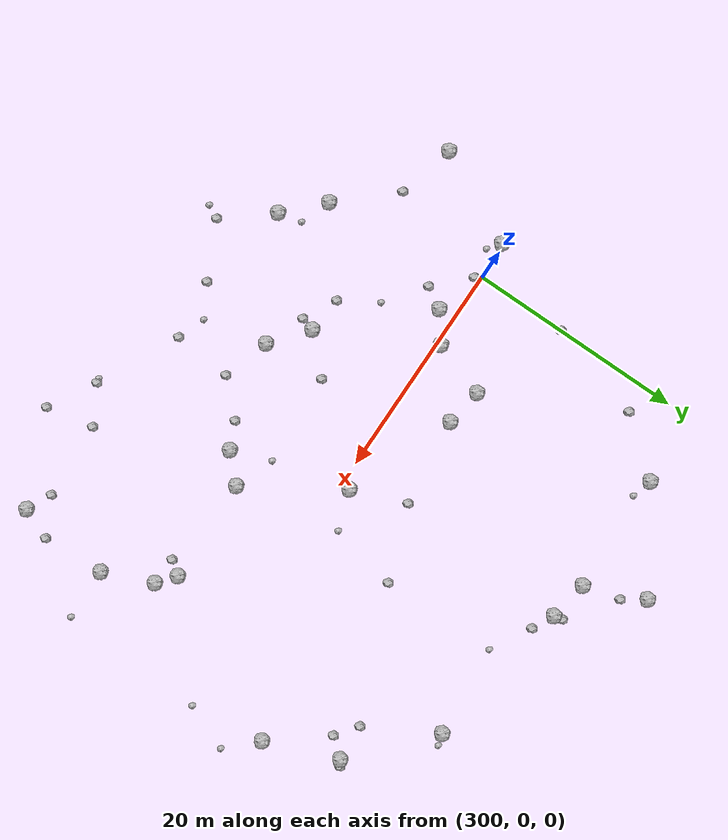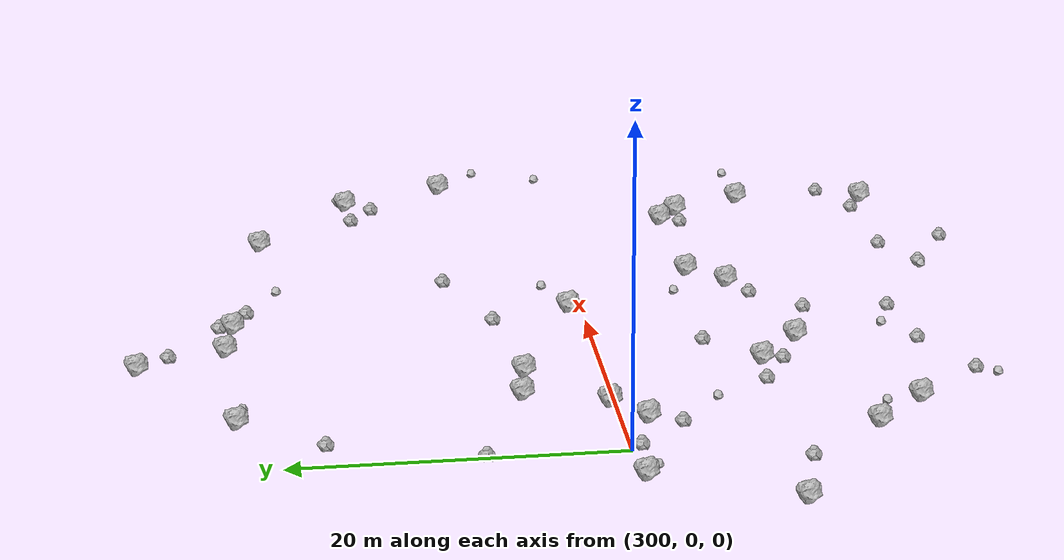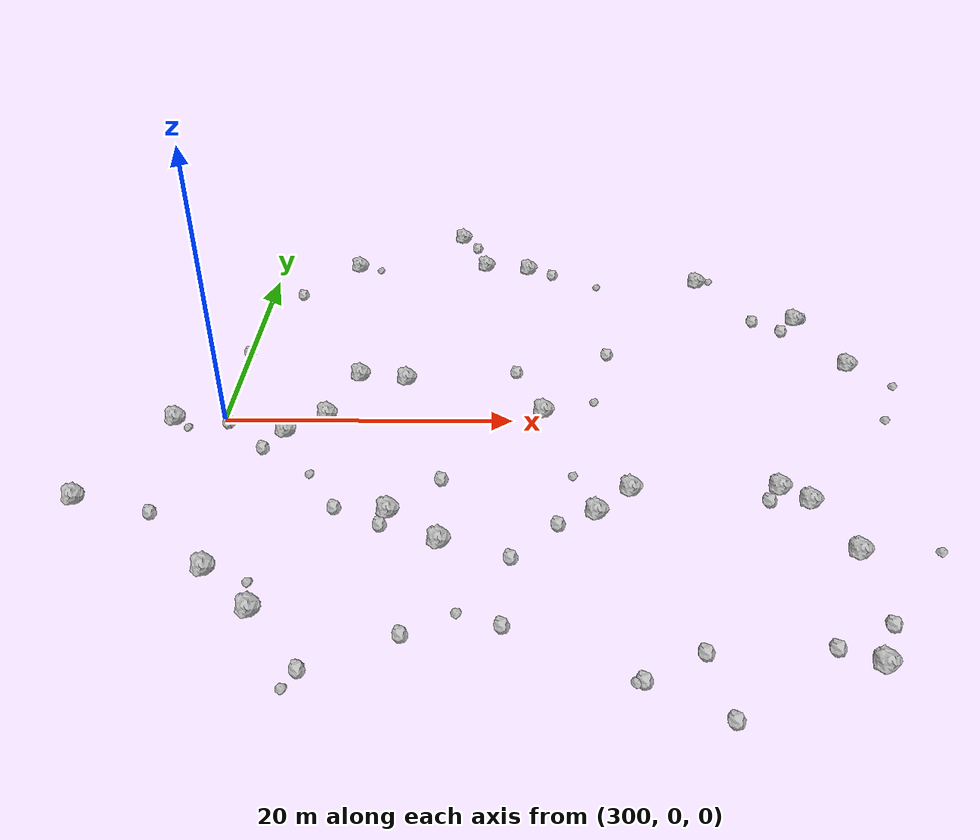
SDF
<sdf version="1.6">
 <world name="default">
  <include><uri>model://sun</uri></include>
  <model name="rock1_8_3">
   <include><uri>model://rock1</uri><pose>307.0835907383927 0.30847742855463167 0.5 0 0 0</pose></include>
  </model>
  <model name="rock1_8_4">
   <include><uri>model://rock1</uri><pose>327.57863602288734 -7.615166316978371 0.5 0 0 0</pose></include>
  </model>
  <model name="rock1_8_5">
   <include><uri>model://rock1</uri><pose>312.24031350443926 4.840180583255815 0.5 0 0 0</pose></include>
  </model>
  <model name="rock1_8_6">
   <include><uri>model://rock1</uri><pose>340.6162537945006 -13.248550921971322 0.5 0 0 0</pose></include>
  </model>
  <model name="rock1_8_7">
   <include><uri>model://rock1</uri><pose>315.4007173820422 28.109997062674644 0.5 0 0 0</pose></include>
  </model>
  <model name="rock1_8_8">
   <include><uri>model://rock1</uri><pose>338.7276686598974 -8.723556963328075 0.5 0 0 0</pose></include>
  </model>
  <model name="rock1_8_9">
   <include><uri>model://rock1</uri><pose>344.9475312581317 6.970280103940453 0.5 0 0 0</pose></include>
  </model>
  <model name="rock1_8_10">
   <include><uri>model://rock1</uri><pose>342.41544801473617 13.609857735636716 0.5 0 0 0</pose></include>
  </model>
  <model name="rock1_8_11">
   <include><uri>model://rock1</uri><pose>302.2090819145878 -14.956293413191315 0.5 0 0 0</pose></include>
  </model>
  <model name="rock1_8_12">
   <include><uri>model://rock1</uri><pose>305.5090758073604 -18.169107479662895 0.5 0 0 0</pose></include>
  </model>
  <model name="rock1_8_13">
   <include><uri>model://rock1</uri><pose>325.27306363020017 -9.85958357901703 0.5 0 0 0</pose></include>
  </model>
  <model name="rock1_8_14">
   <include><uri>model://rock1</uri><pose>322.19642597593673 0.8338576746768496 0.5 0 0 0</pose></include>
  </model>
  <model name="rock1_8_15">
   <include><uri>model://rock1</uri><pose>312.359204246039 -9.842501196809131 0.5 0 0 0</pose></include>
  </model>
  <model name="rock1_8_16">
   <include><uri>model://rock1</uri><pose>339.7101377790762 -21.76823280224456 0.5 0 0 0</pose></include>
  </model>
  <model name="rock1_8_17">
   <include><uri>model://rock1</uri><pose>304.5299158726033 -1.5904955242636944 0.5 0 0 0</pose></include>
  </model>
  <model name="rock1_8_18">
   <include><uri>model://rock1</uri><pose>296.6246565030422 -0.27012788747090255 0.5 0 0 0</pose></include>
  </model>
  <model name="rock1_8_19">
   <include><uri>model://rock1</uri><pose>321.26586769113914 22.081705120325218 0.5 0 0 0</pose></include>
  </model>
  <model name="rock1_8_20">
   <include><uri>model://rock1</uri><pose>335.4417769848357 19.777490427889603 0.5 0 0 0</pose></include>
  </model>
  <model name="rock1_8_21">
   <include><uri>model://rock1</uri><pose>292.4895153241649 -8.748570263802215 0.5 0 0 0</pose></include>
  </model>
  <model name="rock1_8_22">
   <include><uri>model://rock1</uri><pose>315.678614130651 -12.531143426887471 0.5 0 0 0</pose></include>
  </model>
  <model name="rock1_8_23">
   <include><uri>model://rock1</uri><pose>337.06829462673056 -7.396551871694406 0.5 0 0 0</pose></include>
  </model>
  <model name="rock1_8_24">
   <include><uri>model://rock1</uri><pose>306.6385846018499 22.42492919562384 0.5 0 0 0</pose></include>
  </model>
  <model name="rock1_8_25">
   <include><uri>model://rock1</uri><pose>317.6182652882113 22.674288093796903 0.5 0 0 0</pose></include>
  </model>
  <model name="rock1_8_26">
   <include><uri>model://rock1</uri><pose>308.79061037948054 5.343608417534028 0.5 0 0 0</pose></include>
  </model>
  <model name="rock2_8_0">
   <include><uri>model://rock2</uri><pose>330.3940697526665 -21.0584309103669 0.3 0 0 0</pose></include>
  </model>
  <model name="rock2_8_1">
   <include><uri>model://rock2</uri><pose>336.1507469990498 -8.62548742687645 0.3 0 0 0</pose></include>
  </model>
  <model name="rock2_8_2">
   <include><uri>model://rock2</uri><pose>314.07162155948555 -19.92971799198805 0.3 0 0 0</pose></include>
  </model>
  <model name="rock2_8_3">
   <include><uri>model://rock2</uri><pose>311.98003519776245 -11.06966837064886 0.3 0 0 0</pose></include>
  </model>
  <model name="rock2_8_4">
   <include><uri>model://rock2</uri><pose>308.95593034860815 -22.382176425323618 0.3 0 0 0</pose></include>
  </model>
  <model name="rock2_8_5">
   <include><uri>model://rock2</uri><pose>337.42911265635666 -20.687955706096428 0.3 0 0 0</pose></include>
  </model>
  <model name="rock2_8_6">
   <include><uri>model://rock2</uri><pose>299.9910772808208 8.428146242619249 0.3 0 0 0</pose></include>
  </model>
  <model name="rock2_8_7">
   <include><uri>model://rock2</uri><pose>340.9931247381135 11.954465038278691 0.3 0 0 0</pose></include>
  </model>
  <model name="rock2_8_8">
   <include><uri>model://rock2</uri><pose>340.8980841183584 -18.94666828189756 0.3 0 0 0</pose></include>
  </model>
  <model name="rock2_8_9">
   <include><uri>model://rock2</uri><pose>326.94847174317675 -22.962249374154467 0.3 0 0 0</pose></include>
  </model>
  <model name="rock2_8_10">
   <include><uri>model://rock2</uri><pose>303.3475607516509 -3.4737519665177636 0.3 0 0 0</pose></include>
  </model>
  <model name="rock2_8_11">
   <include><uri>model://rock2</uri><pose>342.93183462929625 13.958719638947962 0.3 0 0 0</pose></include>
  </model>
  <model name="rock2_8_12">
   <include><uri>model://rock2</uri><pose>322.8475173608279 -10.935222658269538 0.3 0 0 0</pose></include>
  </model>
  <model name="rock2_8_13">
   <include><uri>model://rock2</uri><pose>323.2516839661278 21.144650863290252 0.3 0 0 0</pose></include>
  </model>
  <model name="rock2_8_14">
   <include><uri>model://rock2</uri><pose>320.2756053524462 5.862100296230906 0.3 0 0 0</pose></include>
  </model>
  <model name="rock2_8_15">
   <include><uri>model://rock2</uri><pose>338.9941379131491 13.441989345849763 0.3 0 0 0</pose></include>
  </model>
  <model name="rock2_8_16">
   <include><uri>model://rock2</uri><pose>316.72405978987666 26.16171750254656 0.3 0 0 0</pose></include>
  </model>
  <model name="rock2_8_17">
   <include><uri>model://rock2</uri><pose>315.4759451651463 -6.6818133116411325 0.3 0 0 0</pose></include>
  </model>
  <model name="rock2_8_18">
   <include><uri>model://rock2</uri><pose>302.5442953060837 17.459694549481362 0.3 0 0 0</pose></include>
  </model>
  <model name="rock2_8_19">
   <include><uri>model://rock2</uri><pose>321.08266699577115 22.932615835976478 0.3 0 0 0</pose></include>
  </model>
  <model name="rock2_8_20">
   <include><uri>model://rock2</uri><pose>319.97143888601494 -13.88317642868994 0.3 0 0 0</pose></include>
  </model>
  <model name="rock2_8_21">
   <include><uri>model://rock2</uri><pose>308.9821710549986 -9.5049247774805 0.3 0 0 0</pose></include>
  </model>
  <model name="rock2_8_22">
   <include><uri>model://rock2</uri><pose>327.08059182589113 8.359420914845643 0.3 0 0 0</pose></include>
  </model>
  <model name="rock2_8_23">
   <include><uri>model://rock2</uri><pose>319.53709650855393 -19.233615647400747 0.3 0 0 0</pose></include>
  </model>
  <model name="rock2_8_24">
   <include><uri>model://rock2</uri><pose>297.70215133548356 -10.090017811853585 0.3 0 0 0</pose></include>
  </model>
  <model name="rock2_8_25">
   <include><uri>model://rock2</uri><pose>331.2545793245977 -25.41781349191023 0.3 0 0 0</pose></include>
  </model>
  <model name="rock2_8_26">
   <include><uri>model://rock2</uri><pose>300.4135151955655 -0.573446454913217 0.3 0 0 0</pose></include>
  </model>
  <model name="rock3_8_0">
   <include><uri>model://rock3</uri><pose>308.46152725168696 21.957431819291322 0.2 0 0 0</pose></include>
  </model>
  <model name="rock3_8_1">
   <include><uri>model://rock3</uri><pose>345.41019304552754 -13.19317887749111 0.2 0 0 0</pose></include>
  </model>
  <model name="rock3_8_2">
   <include><uri>model://rock3</uri><pose>325.7627520465398 2.0842342616299234 0.2 0 0 0</pose></include>
  </model>
  <model name="rock3_8_3">
   <include><uri>model://rock3</uri><pose>326.5488354351459 -23.074126849967058 0.2 0 0 0</pose></include>
  </model>
  <model name="rock3_8_4">
   <include><uri>model://rock3</uri><pose>297.7024984490927 -1.1468199533630212 0.2 0 0 0</pose></include>
  </model>
  <model name="rock3_8_5">
   <include><uri>model://rock3</uri><pose>304.955306912754 -16.033087649427994 0.2 0 0 0</pose></include>
  </model>
  <model name="rock3_8_6">
   <include><uri>model://rock3</uri><pose>336.5002152521426 20.115342689709266 0.2 0 0 0</pose></include>
  </model>
  <model name="rock3_8_7">
   <include><uri>model://rock3</uri><pose>323.9283692777941 -6.266644338921374 0.2 0 0 0</pose></include>
  </model>
  <model name="rock3_8_8">
   <include><uri>model://rock3</uri><pose>317.0006982474741 -18.328182815568752 0.2 0 0 0</pose></include>
  </model>
  <model name="rock3_8_9">
   <include><uri>model://rock3</uri><pose>306.8965043063501 -6.189327041063024 0.2 0 0 0</pose></include>
  </model>
  <model name="rock3_8_10">
   <include><uri>model://rock3</uri><pose>326.9236154966262 19.0727458235271 0.2 0 0 0</pose></include>
  </model>
  <model name="rock3_8_11">
   <include><uri>model://rock3</uri><pose>308.3174085698348 -23.635498462386437 0.2 0 0 0</pose></include>
  </model>
  <model name="rock3_8_12">
   <include><uri>model://rock3</uri><pose>347.57471190367346 4.329138530059588 0.2 0 0 0</pose></include>
  </model>
  <model name="rock3_8_13">
   <include><uri>model://rock3</uri><pose>345.8479012683713 0.11117908222928818 0.2 0 0 0</pose></include>
  </model>
 </world>
</sdf>
